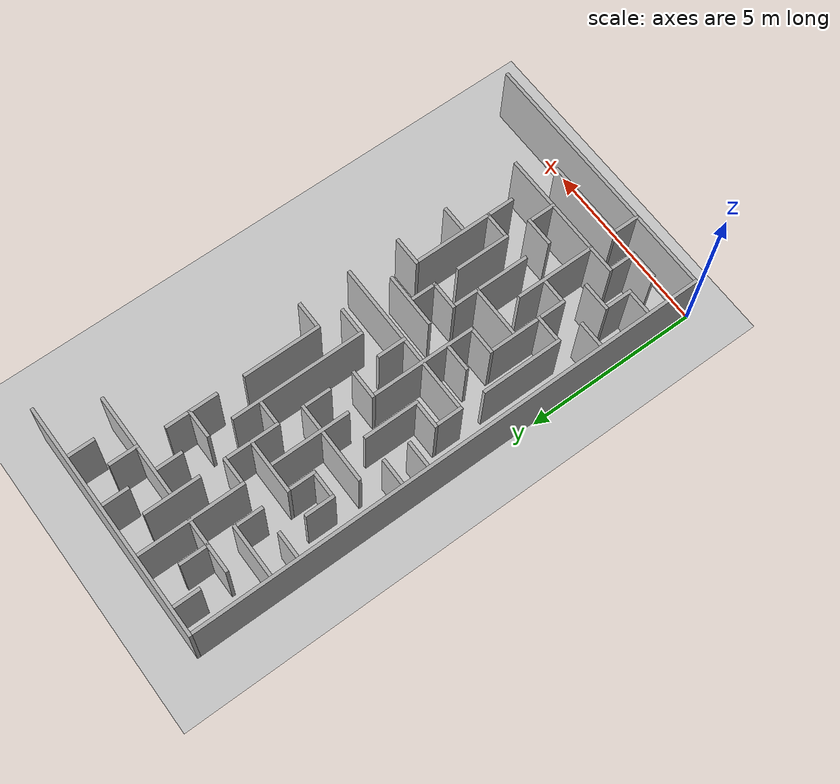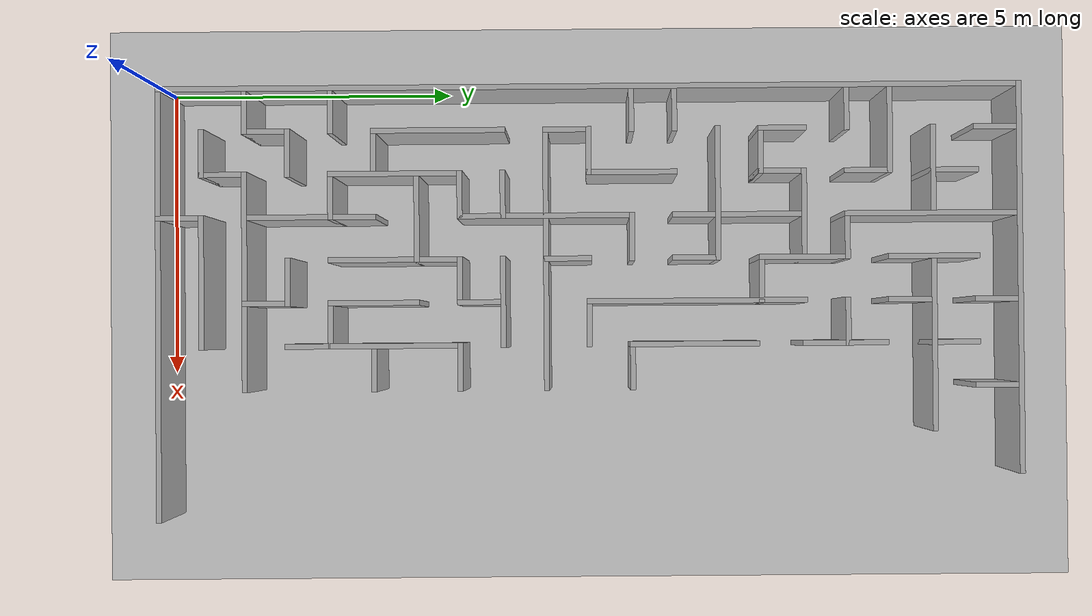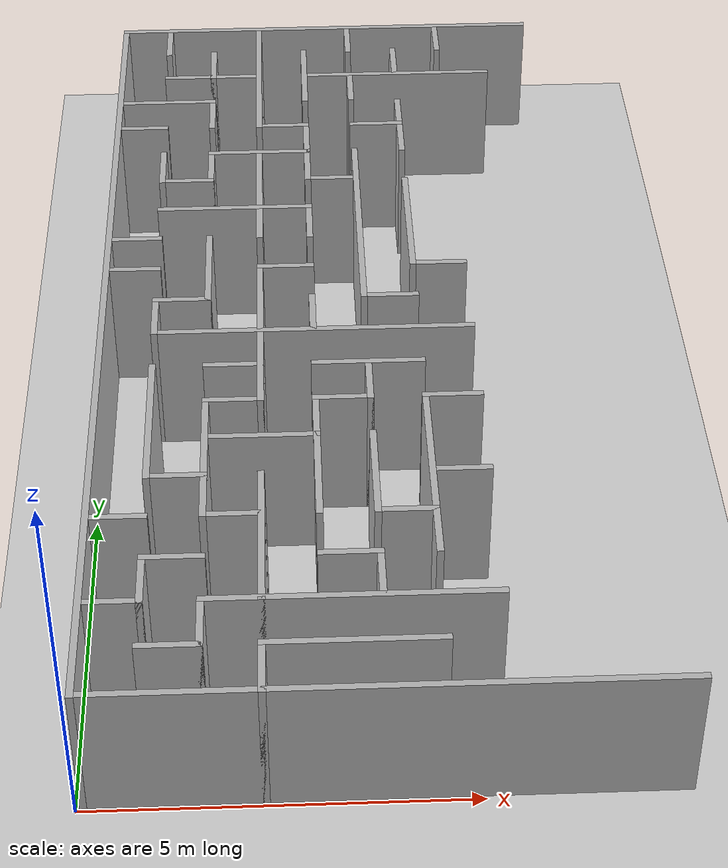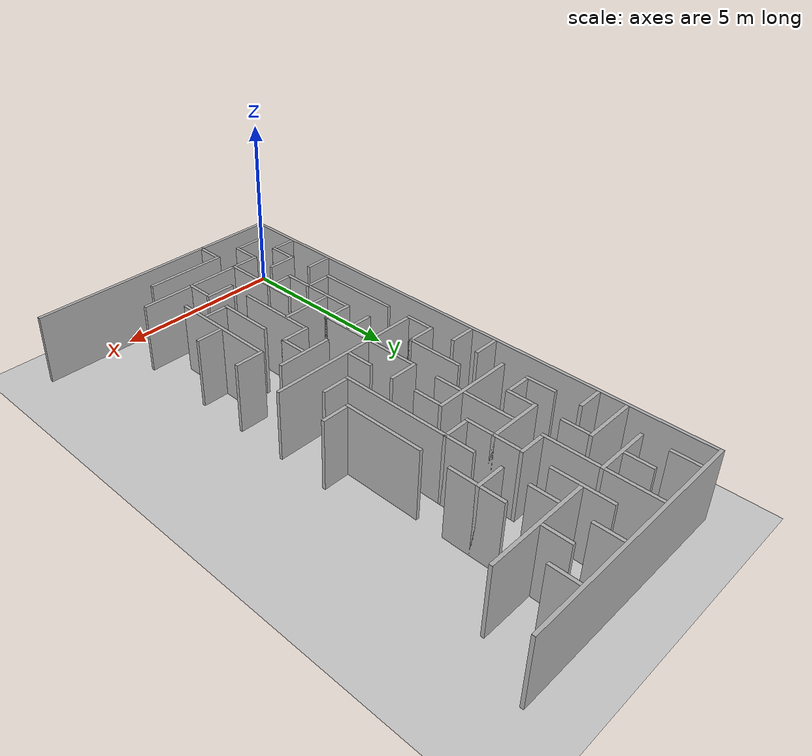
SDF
<sdf version="1.6">
 <world name="slam_world">
  <model name="ground_plane">
   <static>true</static>
   <link name="link">
    <collision name="collision">
     <geometry><plane><normal>0 0 1</normal><size>100 100</size></plane></geometry>
    </collision>
    <visual name="visual">
     <geometry><plane><normal>0 0 1</normal><size>100 100</size></plane></geometry>
     <material>
      <ambient>0.8 0.8 0.8 1</ambient>
      <diffuse>0.8 0.8 0.8 1</diffuse>
      <specular>0.8 0.8 0.8 1</specular>
     </material>
    </visual>
   </link>
  </model>
  <model name="wall_0">
   <static>true</static>
   <pose>3.425925925925926 14.907407407407408 1.0 0 0 0</pose>
   <link name="link">
    <collision name="collision">
     <geometry><box><size>6.7592592592592595 0.0925925925925926 2.0</size></box></geometry>
    </collision>
    <visual name="visual">
     <geometry><box><size>6.7592592592592595 0.0925925925925926 2.0</size></box></geometry>
     <material><ambient>0.5 0.5 0.5 1</ambient><diffuse>0.7 0.7 0.7 1</diffuse></material>
    </visual>
   </link>
  </model>
  <model name="wall_2">
   <static>true</static>
   <pose>0.0925925925925926 7.453703703703704 1.0 0 0 0</pose>
   <link name="link">
    <collision name="collision">
     <geometry><box><size>0.0925925925925926 14.814814814814817 2.0</size></box></geometry>
    </collision>
    <visual name="visual">
     <geometry><box><size>0.0925925925925926 14.814814814814817 2.0</size></box></geometry>
     <material><ambient>0.5 0.5 0.5 1</ambient><diffuse>0.7 0.7 0.7 1</diffuse></material>
    </visual>
   </link>
  </model>
  <model name="wall_3">
   <static>true</static>
   <pose>0.8333333333333334 14.490740740740742 1.0 0 0 0</pose>
   <link name="link">
    <collision name="collision">
     <geometry><box><size>0.0925925925925926 0.7407407407407408 2.0</size></box></geometry>
    </collision>
    <visual name="visual">
     <geometry><box><size>0.0925925925925926 0.7407407407407408 2.0</size></box></geometry>
     <material><ambient>0.5 0.5 0.5 1</ambient><diffuse>0.7 0.7 0.7 1</diffuse></material>
    </visual>
   </link>
  </model>
  <model name="wall_4">
   <static>true</static>
   <pose>2.314814814814815 13.379629629629632 1.0 0 0 0</pose>
   <link name="link">
    <collision name="collision">
     <geometry><box><size>0.0925925925925926 2.9629629629629632 2.0</size></box></geometry>
    </collision>
    <visual name="visual">
     <geometry><box><size>0.0925925925925926 2.9629629629629632 2.0</size></box></geometry>
     <material><ambient>0.5 0.5 0.5 1</ambient><diffuse>0.7 0.7 0.7 1</diffuse></material>
    </visual>
   </link>
  </model>
  <model name="wall_5">
   <static>true</static>
   <pose>3.7962962962962967 14.490740740740742 1.0 0 0 0</pose>
   <link name="link">
    <collision name="collision">
     <geometry><box><size>0.0925925925925926 0.7407407407407408 2.0</size></box></geometry>
    </collision>
    <visual name="visual">
     <geometry><box><size>0.0925925925925926 0.7407407407407408 2.0</size></box></geometry>
     <material><ambient>0.5 0.5 0.5 1</ambient><diffuse>0.7 0.7 0.7 1</diffuse></material>
    </visual>
   </link>
  </model>
  <model name="wall_6">
   <static>true</static>
   <pose>5.277777777777779 14.490740740740742 1.0 0 0 0</pose>
   <link name="link">
    <collision name="collision">
     <geometry><box><size>0.0925925925925926 0.7407407407407408 2.0</size></box></geometry>
    </collision>
    <visual name="visual">
     <geometry><box><size>0.0925925925925926 0.7407407407407408 2.0</size></box></geometry>
     <material><ambient>0.5 0.5 0.5 1</ambient><diffuse>0.7 0.7 0.7 1</diffuse></material>
    </visual>
   </link>
  </model>
  <model name="wall_13">
   <static>true</static>
   <pose>1.5740740740740742 13.796296296296298 1.0 0 0 0</pose>
   <link name="link">
    <collision name="collision">
     <geometry><box><size>0.0925925925925926 0.8333333333333334 2.0</size></box></geometry>
    </collision>
    <visual name="visual">
     <geometry><box><size>0.0925925925925926 0.8333333333333334 2.0</size></box></geometry>
     <material><ambient>0.5 0.5 0.5 1</ambient><diffuse>0.7 0.7 0.7 1</diffuse></material>
    </visual>
   </link>
  </model>
  <model name="wall_14">
   <static>true</static>
   <pose>3.055555555555556 13.425925925925927 1.0 0 0 0</pose>
   <link name="link">
    <collision name="collision">
     <geometry><box><size>0.0925925925925926 1.5740740740740742 2.0</size></box></geometry>
    </collision>
    <visual name="visual">
     <geometry><box><size>0.0925925925925926 1.5740740740740742 2.0</size></box></geometry>
     <material><ambient>0.5 0.5 0.5 1</ambient><diffuse>0.7 0.7 0.7 1</diffuse></material>
    </visual>
   </link>
  </model>
  <model name="wall_15">
   <static>true</static>
   <pose>4.537037037037037 13.796296296296298 1.0 0 0 0</pose>
   <link name="link">
    <collision name="collision">
     <geometry><box><size>0.0925925925925926 0.8333333333333334 2.0</size></box></geometry>
    </collision>
    <visual name="visual">
     <geometry><box><size>0.0925925925925926 0.8333333333333334 2.0</size></box></geometry>
     <material><ambient>0.5 0.5 0.5 1</ambient><diffuse>0.7 0.7 0.7 1</diffuse></material>
    </visual>
   </link>
  </model>
  <model name="wall_24">
   <static>true</static>
   <pose>1.5740740740740742 13.425925925925927 1.0 0 0 0</pose>
   <link name="link">
    <collision name="collision">
     <geometry><box><size>1.5740740740740742 0.0925925925925926 2.0</size></box></geometry>
    </collision>
    <visual name="visual">
     <geometry><box><size>1.5740740740740742 0.0925925925925926 2.0</size></box></geometry>
     <material><ambient>0.5 0.5 0.5 1</ambient><diffuse>0.7 0.7 0.7 1</diffuse></material>
    </visual>
   </link>
  </model>
  <model name="wall_25">
   <static>true</static>
   <pose>4.583333333333334 13.425925925925927 1.0 0 0 0</pose>
   <link name="link">
    <collision name="collision">
     <geometry><box><size>2.9629629629629632 0.0925925925925926 2.0</size></box></geometry>
    </collision>
    <visual name="visual">
     <geometry><box><size>2.9629629629629632 0.0925925925925926 2.0</size></box></geometry>
     <material><ambient>0.5 0.5 0.5 1</ambient><diffuse>0.7 0.7 0.7 1</diffuse></material>
    </visual>
   </link>
  </model>
  <model name="wall_30">
   <static>true</static>
   <pose>3.7962962962962967 13.009259259259261 1.0 0 0 0</pose>
   <link name="link">
    <collision name="collision">
     <geometry><box><size>0.0925925925925926 0.7407407407407408 2.0</size></box></geometry>
    </collision>
    <visual name="visual">
     <geometry><box><size>0.0925925925925926 0.7407407407407408 2.0</size></box></geometry>
     <material><ambient>0.5 0.5 0.5 1</ambient><diffuse>0.7 0.7 0.7 1</diffuse></material>
    </visual>
   </link>
  </model>
  <model name="wall_33">
   <static>true</static>
   <pose>0.8796296296296298 12.685185185185187 1.0 0 0 0</pose>
   <link name="link">
    <collision name="collision">
     <geometry><box><size>1.4814814814814816 0.0925925925925926 2.0</size></box></geometry>
    </collision>
    <visual name="visual">
     <geometry><box><size>1.4814814814814816 0.0925925925925926 2.0</size></box></geometry>
     <material><ambient>0.5 0.5 0.5 1</ambient><diffuse>0.7 0.7 0.7 1</diffuse></material>
    </visual>
   </link>
  </model>
  <model name="wall_38">
   <static>true</static>
   <pose>1.5740740740740742 12.268518518518519 1.0 0 0 0</pose>
   <link name="link">
    <collision name="collision">
     <geometry><box><size>0.0925925925925926 0.7407407407407408 2.0</size></box></geometry>
    </collision>
    <visual name="visual">
     <geometry><box><size>0.0925925925925926 0.7407407407407408 2.0</size></box></geometry>
     <material><ambient>0.5 0.5 0.5 1</ambient><diffuse>0.7 0.7 0.7 1</diffuse></material>
    </visual>
   </link>
  </model>
  <model name="wall_39">
   <static>true</static>
   <pose>4.537037037037037 11.898148148148149 1.0 0 0 0</pose>
   <link name="link">
    <collision name="collision">
     <geometry><box><size>0.0925925925925926 1.4814814814814816 2.0</size></box></geometry>
    </collision>
    <visual name="visual">
     <geometry><box><size>0.0925925925925926 1.4814814814814816 2.0</size></box></geometry>
     <material><ambient>0.5 0.5 0.5 1</ambient><diffuse>0.7 0.7 0.7 1</diffuse></material>
    </visual>
   </link>
  </model>
  <model name="wall_41">
   <static>true</static>
   <pose>0.5092592592592593 11.944444444444446 1.0 0 0 0</pose>
   <link name="link">
    <collision name="collision">
     <geometry><box><size>0.7407407407407408 0.0925925925925926 2.0</size></box></geometry>
    </collision>
    <visual name="visual">
     <geometry><box><size>0.7407407407407408 0.0925925925925926 2.0</size></box></geometry>
     <material><ambient>0.5 0.5 0.5 1</ambient><diffuse>0.7 0.7 0.7 1</diffuse></material>
    </visual>
   </link>
  </model>
  <model name="wall_42">
   <static>true</static>
   <pose>2.731481481481482 11.944444444444446 1.0 0 0 0</pose>
   <link name="link">
    <collision name="collision">
     <geometry><box><size>0.7407407407407408 0.0925925925925926 2.0</size></box></geometry>
    </collision>
    <visual name="visual">
     <geometry><box><size>0.7407407407407408 0.0925925925925926 2.0</size></box></geometry>
     <material><ambient>0.5 0.5 0.5 1</ambient><diffuse>0.7 0.7 0.7 1</diffuse></material>
    </visual>
   </link>
  </model>
  <model name="wall_43">
   <static>true</static>
   <pose>4.166666666666667 11.944444444444446 1.0 0 0 0</pose>
   <link name="link">
    <collision name="collision">
     <geometry><box><size>0.8333333333333334 0.0925925925925926 2.0</size></box></geometry>
    </collision>
    <visual name="visual">
     <geometry><box><size>0.8333333333333334 0.0925925925925926 2.0</size></box></geometry>
     <material><ambient>0.5 0.5 0.5 1</ambient><diffuse>0.7 0.7 0.7 1</diffuse></material>
    </visual>
   </link>
  </model>
  <model name="wall_49">
   <static>true</static>
   <pose>3.055555555555556 11.157407407407408 1.0 0 0 0</pose>
   <link name="link">
    <collision name="collision">
     <geometry><box><size>0.0925925925925926 1.4814814814814816 2.0</size></box></geometry>
    </collision>
    <visual name="visual">
     <geometry><box><size>0.0925925925925926 1.4814814814814816 2.0</size></box></geometry>
     <material><ambient>0.5 0.5 0.5 1</ambient><diffuse>0.7 0.7 0.7 1</diffuse></material>
    </visual>
   </link>
  </model>
  <model name="wall_54">
   <static>true</static>
   <pose>0.8333333333333334 10.833333333333334 1.0 0 0 0</pose>
   <link name="link">
    <collision name="collision">
     <geometry><box><size>0.0925925925925926 0.8333333333333334 2.0</size></box></geometry>
    </collision>
    <visual name="visual">
     <geometry><box><size>0.0925925925925926 0.8333333333333334 2.0</size></box></geometry>
     <material><ambient>0.5 0.5 0.5 1</ambient><diffuse>0.7 0.7 0.7 1</diffuse></material>
    </visual>
   </link>
  </model>
  <model name="wall_55">
   <static>true</static>
   <pose>2.314814814814815 11.203703703703704 1.0 0 0 0</pose>
   <link name="link">
    <collision name="collision">
     <geometry><box><size>1.5740740740740742 0.0925925925925926 2.0</size></box></geometry>
    </collision>
    <visual name="visual">
     <geometry><box><size>1.5740740740740742 0.0925925925925926 2.0</size></box></geometry>
     <material><ambient>0.5 0.5 0.5 1</ambient><diffuse>0.7 0.7 0.7 1</diffuse></material>
    </visual>
   </link>
  </model>
  <model name="wall_56">
   <static>true</static>
   <pose>3.7962962962962967 9.351851851851853 1.0 0 0 0</pose>
   <link name="link">
    <collision name="collision">
     <geometry><box><size>0.0925925925925926 3.7962962962962967 2.0</size></box></geometry>
    </collision>
    <visual name="visual">
     <geometry><box><size>0.0925925925925926 3.7962962962962967 2.0</size></box></geometry>
     <material><ambient>0.5 0.5 0.5 1</ambient><diffuse>0.7 0.7 0.7 1</diffuse></material>
    </visual>
   </link>
  </model>
  <model name="wall_62">
   <static>true</static>
   <pose>1.5740740740740742 10.787037037037038 1.0 0 0 0</pose>
   <link name="link">
    <collision name="collision">
     <geometry><box><size>0.0925925925925926 0.7407407407407408 2.0</size></box></geometry>
    </collision>
    <visual name="visual">
     <geometry><box><size>0.0925925925925926 0.7407407407407408 2.0</size></box></geometry>
     <material><ambient>0.5 0.5 0.5 1</ambient><diffuse>0.7 0.7 0.7 1</diffuse></material>
    </visual>
   </link>
  </model>
  <model name="wall_63">
   <static>true</static>
   <pose>2.314814814814815 10.046296296296298 1.0 0 0 0</pose>
   <link name="link">
    <collision name="collision">
     <geometry><box><size>0.0925925925925926 2.2222222222222223 2.0</size></box></geometry>
    </collision>
    <visual name="visual">
     <geometry><box><size>0.0925925925925926 2.2222222222222223 2.0</size></box></geometry>
     <material><ambient>0.5 0.5 0.5 1</ambient><diffuse>0.7 0.7 0.7 1</diffuse></material>
    </visual>
   </link>
  </model>
  <model name="wall_66">
   <static>true</static>
   <pose>1.2500000000000002 10.462962962962964 1.0 0 0 0</pose>
   <link name="link">
    <collision name="collision">
     <geometry><box><size>0.7407407407407408 0.0925925925925926 2.0</size></box></geometry>
    </collision>
    <visual name="visual">
     <geometry><box><size>0.7407407407407408 0.0925925925925926 2.0</size></box></geometry>
     <material><ambient>0.5 0.5 0.5 1</ambient><diffuse>0.7 0.7 0.7 1</diffuse></material>
    </visual>
   </link>
  </model>
  <model name="wall_67">
   <static>true</static>
   <pose>3.4722222222222228 10.462962962962964 1.0 0 0 0</pose>
   <link name="link">
    <collision name="collision">
     <geometry><box><size>0.7407407407407408 0.0925925925925926 2.0</size></box></geometry>
    </collision>
    <visual name="visual">
     <geometry><box><size>0.7407407407407408 0.0925925925925926 2.0</size></box></geometry>
     <material><ambient>0.5 0.5 0.5 1</ambient><diffuse>0.7 0.7 0.7 1</diffuse></material>
    </visual>
   </link>
  </model>
  <model name="wall_73">
   <static>true</static>
   <pose>4.537037037037037 9.305555555555557 1.0 0 0 0</pose>
   <link name="link">
    <collision name="collision">
     <geometry><box><size>0.0925925925925926 2.2222222222222223 2.0</size></box></geometry>
    </collision>
    <visual name="visual">
     <geometry><box><size>0.0925925925925926 2.2222222222222223 2.0</size></box></geometry>
     <material><ambient>0.5 0.5 0.5 1</ambient><diffuse>0.7 0.7 0.7 1</diffuse></material>
    </visual>
   </link>
  </model>
  <model name="wall_78">
   <static>true</static>
   <pose>1.9444444444444446 9.722222222222223 1.0 0 0 0</pose>
   <link name="link">
    <collision name="collision">
     <geometry><box><size>2.314814814814815 0.0925925925925926 2.0</size></box></geometry>
    </collision>
    <visual name="visual">
     <geometry><box><size>2.314814814814815 0.0925925925925926 2.0</size></box></geometry>
     <material><ambient>0.5 0.5 0.5 1</ambient><diffuse>0.7 0.7 0.7 1</diffuse></material>
    </visual>
   </link>
  </model>
  <model name="wall_84">
   <static>true</static>
   <pose>3.055555555555556 9.305555555555557 1.0 0 0 0</pose>
   <link name="link">
    <collision name="collision">
     <geometry><box><size>0.0925925925925926 0.7407407407407408 2.0</size></box></geometry>
    </collision>
    <visual name="visual">
     <geometry><box><size>0.0925925925925926 0.7407407407407408 2.0</size></box></geometry>
     <material><ambient>0.5 0.5 0.5 1</ambient><diffuse>0.7 0.7 0.7 1</diffuse></material>
    </visual>
   </link>
  </model>
  <model name="wall_89">
   <static>true</static>
   <pose>0.5092592592592593 8.981481481481483 1.0 0 0 0</pose>
   <link name="link">
    <collision name="collision">
     <geometry><box><size>0.7407407407407408 0.0925925925925926 2.0</size></box></geometry>
    </collision>
    <visual name="visual">
     <geometry><box><size>0.7407407407407408 0.0925925925925926 2.0</size></box></geometry>
     <material><ambient>0.5 0.5 0.5 1</ambient><diffuse>0.7 0.7 0.7 1</diffuse></material>
    </visual>
   </link>
  </model>
  <model name="wall_90">
   <static>true</static>
   <pose>1.5740740740740742 8.240740740740742 1.0 0 0 0</pose>
   <link name="link">
    <collision name="collision">
     <geometry><box><size>0.0925925925925926 1.5740740740740742 2.0</size></box></geometry>
    </collision>
    <visual name="visual">
     <geometry><box><size>0.0925925925925926 1.5740740740740742 2.0</size></box></geometry>
     <material><ambient>0.5 0.5 0.5 1</ambient><diffuse>0.7 0.7 0.7 1</diffuse></material>
    </visual>
   </link>
  </model>
  <model name="wall_98">
   <static>true</static>
   <pose>0.5092592592592593 8.240740740740742 1.0 0 0 0</pose>
   <link name="link">
    <collision name="collision">
     <geometry><box><size>0.7407407407407408 0.0925925925925926 2.0</size></box></geometry>
    </collision>
    <visual name="visual">
     <geometry><box><size>0.7407407407407408 0.0925925925925926 2.0</size></box></geometry>
     <material><ambient>0.5 0.5 0.5 1</ambient><diffuse>0.7 0.7 0.7 1</diffuse></material>
    </visual>
   </link>
  </model>
  <model name="wall_99">
   <static>true</static>
   <pose>2.6851851851851856 8.240740740740742 1.0 0 0 0</pose>
   <link name="link">
    <collision name="collision">
     <geometry><box><size>0.8333333333333334 0.0925925925925926 2.0</size></box></geometry>
    </collision>
    <visual name="visual">
     <geometry><box><size>0.8333333333333334 0.0925925925925926 2.0</size></box></geometry>
     <material><ambient>0.5 0.5 0.5 1</ambient><diffuse>0.7 0.7 0.7 1</diffuse></material>
    </visual>
   </link>
  </model>
  <model name="wall_100">
   <static>true</static>
   <pose>4.953703703703704 8.240740740740742 1.0 0 0 0</pose>
   <link name="link">
    <collision name="collision">
     <geometry><box><size>0.7407407407407408 0.0925925925925926 2.0</size></box></geometry>
    </collision>
    <visual name="visual">
     <geometry><box><size>0.7407407407407408 0.0925925925925926 2.0</size></box></geometry>
     <material><ambient>0.5 0.5 0.5 1</ambient><diffuse>0.7 0.7 0.7 1</diffuse></material>
    </visual>
   </link>
  </model>
  <model name="wall_106">
   <static>true</static>
   <pose>2.314814814814815 6.712962962962964 1.0 0 0 0</pose>
   <link name="link">
    <collision name="collision">
     <geometry><box><size>0.0925925925925926 2.9629629629629632 2.0</size></box></geometry>
    </collision>
    <visual name="visual">
     <geometry><box><size>0.0925925925925926 2.9629629629629632 2.0</size></box></geometry>
     <material><ambient>0.5 0.5 0.5 1</ambient><diffuse>0.7 0.7 0.7 1</diffuse></material>
    </visual>
   </link>
  </model>
  <model name="wall_108">
   <static>true</static>
   <pose>1.2037037037037037 7.500000000000001 1.0 0 0 0</pose>
   <link name="link">
    <collision name="collision">
     <geometry><box><size>0.8333333333333334 0.0925925925925926 2.0</size></box></geometry>
    </collision>
    <visual name="visual">
     <geometry><box><size>0.8333333333333334 0.0925925925925926 2.0</size></box></geometry>
     <material><ambient>0.5 0.5 0.5 1</ambient><diffuse>0.7 0.7 0.7 1</diffuse></material>
    </visual>
   </link>
  </model>
  <model name="wall_109">
   <static>true</static>
   <pose>3.055555555555556 7.129629629629631 1.0 0 0 0</pose>
   <link name="link">
    <collision name="collision">
     <geometry><box><size>0.0925925925925926 0.8333333333333334 2.0</size></box></geometry>
    </collision>
    <visual name="visual">
     <geometry><box><size>0.0925925925925926 0.8333333333333334 2.0</size></box></geometry>
     <material><ambient>0.5 0.5 0.5 1</ambient><diffuse>0.7 0.7 0.7 1</diffuse></material>
    </visual>
   </link>
  </model>
  <model name="wall_110">
   <static>true</static>
   <pose>4.212962962962964 7.500000000000001 1.0 0 0 0</pose>
   <link name="link">
    <collision name="collision">
     <geometry><box><size>0.7407407407407408 0.0925925925925926 2.0</size></box></geometry>
    </collision>
    <visual name="visual">
     <geometry><box><size>0.7407407407407408 0.0925925925925926 2.0</size></box></geometry>
     <material><ambient>0.5 0.5 0.5 1</ambient><diffuse>0.7 0.7 0.7 1</diffuse></material>
    </visual>
   </link>
  </model>
  <model name="wall_116">
   <static>true</static>
   <pose>0.8333333333333334 7.083333333333334 1.0 0 0 0</pose>
   <link name="link">
    <collision name="collision">
     <geometry><box><size>0.0925925925925926 0.7407407407407408 2.0</size></box></geometry>
    </collision>
    <visual name="visual">
     <geometry><box><size>0.0925925925925926 0.7407407407407408 2.0</size></box></geometry>
     <material><ambient>0.5 0.5 0.5 1</ambient><diffuse>0.7 0.7 0.7 1</diffuse></material>
    </visual>
   </link>
  </model>
  <model name="wall_118">
   <static>true</static>
   <pose>3.101851851851852 6.7592592592592595 1.0 0 0 0</pose>
   <link name="link">
    <collision name="collision">
     <geometry><box><size>4.444444444444445 0.0925925925925926 2.0</size></box></geometry>
    </collision>
    <visual name="visual">
     <geometry><box><size>4.444444444444445 0.0925925925925926 2.0</size></box></geometry>
     <material><ambient>0.5 0.5 0.5 1</ambient><diffuse>0.7 0.7 0.7 1</diffuse></material>
    </visual>
   </link>
  </model>
  <model name="wall_125">
   <static>true</static>
   <pose>0.8333333333333334 4.907407407407407 1.0 0 0 0</pose>
   <link name="link">
    <collision name="collision">
     <geometry><box><size>0.0925925925925926 2.314814814814815 2.0</size></box></geometry>
    </collision>
    <visual name="visual">
     <geometry><box><size>0.0925925925925926 2.314814814814815 2.0</size></box></geometry>
     <material><ambient>0.5 0.5 0.5 1</ambient><diffuse>0.7 0.7 0.7 1</diffuse></material>
    </visual>
   </link>
  </model>
  <model name="wall_126">
   <static>true</static>
   <pose>1.9444444444444446 6.018518518518519 1.0 0 0 0</pose>
   <link name="link">
    <collision name="collision">
     <geometry><box><size>0.8333333333333334 0.0925925925925926 2.0</size></box></geometry>
    </collision>
    <visual name="visual">
     <geometry><box><size>0.8333333333333334 0.0925925925925926 2.0</size></box></geometry>
     <material><ambient>0.5 0.5 0.5 1</ambient><diffuse>0.7 0.7 0.7 1</diffuse></material>
    </visual>
   </link>
  </model>
  <model name="wall_127">
   <static>true</static>
   <pose>3.7962962962962967 6.018518518518519 1.0 0 0 0</pose>
   <link name="link">
    <collision name="collision">
     <geometry><box><size>1.5740740740740742 0.0925925925925926 2.0</size></box></geometry>
    </collision>
    <visual name="visual">
     <geometry><box><size>1.5740740740740742 0.0925925925925926 2.0</size></box></geometry>
     <material><ambient>0.5 0.5 0.5 1</ambient><diffuse>0.7 0.7 0.7 1</diffuse></material>
    </visual>
   </link>
  </model>
  <model name="wall_131">
   <static>true</static>
   <pose>3.7962962962962967 5.601851851851852 1.0 0 0 0</pose>
   <link name="link">
    <collision name="collision">
     <geometry><box><size>0.0925925925925926 0.7407407407407408 2.0</size></box></geometry>
    </collision>
    <visual name="visual">
     <geometry><box><size>0.0925925925925926 0.7407407407407408 2.0</size></box></geometry>
     <material><ambient>0.5 0.5 0.5 1</ambient><diffuse>0.7 0.7 0.7 1</diffuse></material>
    </visual>
   </link>
  </model>
  <model name="wall_135">
   <static>true</static>
   <pose>1.9444444444444446 5.277777777777779 1.0 0 0 0</pose>
   <link name="link">
    <collision name="collision">
     <geometry><box><size>0.8333333333333334 0.0925925925925926 2.0</size></box></geometry>
    </collision>
    <visual name="visual">
     <geometry><box><size>0.8333333333333334 0.0925925925925926 2.0</size></box></geometry>
     <material><ambient>0.5 0.5 0.5 1</ambient><diffuse>0.7 0.7 0.7 1</diffuse></material>
    </visual>
   </link>
  </model>
  <model name="wall_136">
   <static>true</static>
   <pose>3.425925925925926 5.277777777777779 1.0 0 0 0</pose>
   <link name="link">
    <collision name="collision">
     <geometry><box><size>0.8333333333333334 0.0925925925925926 2.0</size></box></geometry>
    </collision>
    <visual name="visual">
     <geometry><box><size>0.8333333333333334 0.0925925925925926 2.0</size></box></geometry>
     <material><ambient>0.5 0.5 0.5 1</ambient><diffuse>0.7 0.7 0.7 1</diffuse></material>
    </visual>
   </link>
  </model>
  <model name="wall_137">
   <static>true</static>
   <pose>4.907407407407407 5.277777777777779 1.0 0 0 0</pose>
   <link name="link">
    <collision name="collision">
     <geometry><box><size>0.8333333333333334 0.0925925925925926 2.0</size></box></geometry>
    </collision>
    <visual name="visual">
     <geometry><box><size>0.8333333333333334 0.0925925925925926 2.0</size></box></geometry>
     <material><ambient>0.5 0.5 0.5 1</ambient><diffuse>0.7 0.7 0.7 1</diffuse></material>
    </visual>
   </link>
  </model>
  <model name="wall_143">
   <static>true</static>
   <pose>1.5740740740740742 4.120370370370371 1.0 0 0 0</pose>
   <link name="link">
    <collision name="collision">
     <geometry><box><size>0.0925925925925926 2.2222222222222223 2.0</size></box></geometry>
    </collision>
    <visual name="visual">
     <geometry><box><size>0.0925925925925926 2.2222222222222223 2.0</size></box></geometry>
     <material><ambient>0.5 0.5 0.5 1</ambient><diffuse>0.7 0.7 0.7 1</diffuse></material>
    </visual>
   </link>
  </model>
  <model name="wall_144">
   <static>true</static>
   <pose>3.055555555555556 4.120370370370371 1.0 0 0 0</pose>
   <link name="link">
    <collision name="collision">
     <geometry><box><size>0.0925925925925926 2.2222222222222223 2.0</size></box></geometry>
    </collision>
    <visual name="visual">
     <geometry><box><size>0.0925925925925926 2.2222222222222223 2.0</size></box></geometry>
     <material><ambient>0.5 0.5 0.5 1</ambient><diffuse>0.7 0.7 0.7 1</diffuse></material>
    </visual>
   </link>
  </model>
  <model name="wall_145">
   <static>true</static>
   <pose>4.537037037037037 3.7500000000000004 1.0 0 0 0</pose>
   <link name="link">
    <collision name="collision">
     <geometry><box><size>0.0925925925925926 2.9629629629629632 2.0</size></box></geometry>
    </collision>
    <visual name="visual">
     <geometry><box><size>0.0925925925925926 2.9629629629629632 2.0</size></box></geometry>
     <material><ambient>0.5 0.5 0.5 1</ambient><diffuse>0.7 0.7 0.7 1</diffuse></material>
    </visual>
   </link>
  </model>
  <model name="wall_149">
   <static>true</static>
   <pose>2.361111111111111 4.537037037037037 1.0 0 0 0</pose>
   <link name="link">
    <collision name="collision">
     <geometry><box><size>1.4814814814814816 0.0925925925925926 2.0</size></box></geometry>
    </collision>
    <visual name="visual">
     <geometry><box><size>1.4814814814814816 0.0925925925925926 2.0</size></box></geometry>
     <material><ambient>0.5 0.5 0.5 1</ambient><diffuse>0.7 0.7 0.7 1</diffuse></material>
    </visual>
   </link>
  </model>
  <model name="wall_150">
   <static>true</static>
   <pose>3.7962962962962967 3.7962962962962967 1.0 0 0 0</pose>
   <link name="link">
    <collision name="collision">
     <geometry><box><size>0.0925925925925926 1.5740740740740742 2.0</size></box></geometry>
    </collision>
    <visual name="visual">
     <geometry><box><size>0.0925925925925926 1.5740740740740742 2.0</size></box></geometry>
     <material><ambient>0.5 0.5 0.5 1</ambient><diffuse>0.7 0.7 0.7 1</diffuse></material>
    </visual>
   </link>
  </model>
  <model name="wall_157">
   <static>true</static>
   <pose>1.2500000000000002 3.7962962962962967 1.0 0 0 0</pose>
   <link name="link">
    <collision name="collision">
     <geometry><box><size>0.7407407407407408 0.0925925925925926 2.0</size></box></geometry>
    </collision>
    <visual name="visual">
     <geometry><box><size>0.7407407407407408 0.0925925925925926 2.0</size></box></geometry>
     <material><ambient>0.5 0.5 0.5 1</ambient><diffuse>0.7 0.7 0.7 1</diffuse></material>
    </visual>
   </link>
  </model>
  <model name="wall_158">
   <static>true</static>
   <pose>2.314814814814815 2.6851851851851856 1.0 0 0 0</pose>
   <link name="link">
    <collision name="collision">
     <geometry><box><size>0.0925925925925926 2.314814814814815 2.0</size></box></geometry>
    </collision>
    <visual name="visual">
     <geometry><box><size>0.0925925925925926 2.314814814814815 2.0</size></box></geometry>
     <material><ambient>0.5 0.5 0.5 1</ambient><diffuse>0.7 0.7 0.7 1</diffuse></material>
    </visual>
   </link>
  </model>
  <model name="wall_159">
   <static>true</static>
   <pose>4.953703703703704 3.7962962962962967 1.0 0 0 0</pose>
   <link name="link">
    <collision name="collision">
     <geometry><box><size>0.7407407407407408 0.0925925925925926 2.0</size></box></geometry>
    </collision>
    <visual name="visual">
     <geometry><box><size>0.7407407407407408 0.0925925925925926 2.0</size></box></geometry>
     <material><ambient>0.5 0.5 0.5 1</ambient><diffuse>0.7 0.7 0.7 1</diffuse></material>
    </visual>
   </link>
  </model>
  <model name="wall_166">
   <static>true</static>
   <pose>0.5092592592592593 3.055555555555556 1.0 0 0 0</pose>
   <link name="link">
    <collision name="collision">
     <geometry><box><size>0.7407407407407408 0.0925925925925926 2.0</size></box></geometry>
    </collision>
    <visual name="visual">
     <geometry><box><size>0.7407407407407408 0.0925925925925926 2.0</size></box></geometry>
     <material><ambient>0.5 0.5 0.5 1</ambient><diffuse>0.7 0.7 0.7 1</diffuse></material>
    </visual>
   </link>
  </model>
  <model name="wall_167">
   <static>true</static>
   <pose>1.990740740740741 3.055555555555556 1.0 0 0 0</pose>
   <link name="link">
    <collision name="collision">
     <geometry><box><size>0.7407407407407408 0.0925925925925926 2.0</size></box></geometry>
    </collision>
    <visual name="visual">
     <geometry><box><size>0.7407407407407408 0.0925925925925926 2.0</size></box></geometry>
     <material><ambient>0.5 0.5 0.5 1</ambient><diffuse>0.7 0.7 0.7 1</diffuse></material>
    </visual>
   </link>
  </model>
  <model name="wall_168">
   <static>true</static>
   <pose>4.212962962962964 3.055555555555556 1.0 0 0 0</pose>
   <link name="link">
    <collision name="collision">
     <geometry><box><size>0.7407407407407408 0.0925925925925926 2.0</size></box></geometry>
    </collision>
    <visual name="visual">
     <geometry><box><size>0.7407407407407408 0.0925925925925926 2.0</size></box></geometry>
     <material><ambient>0.5 0.5 0.5 1</ambient><diffuse>0.7 0.7 0.7 1</diffuse></material>
    </visual>
   </link>
  </model>
  <model name="wall_178">
   <static>true</static>
   <pose>1.2037037037037037 2.314814814814815 1.0 0 0 0</pose>
   <link name="link">
    <collision name="collision">
     <geometry><box><size>0.8333333333333334 0.0925925925925926 2.0</size></box></geometry>
    </collision>
    <visual name="visual">
     <geometry><box><size>0.8333333333333334 0.0925925925925926 2.0</size></box></geometry>
     <material><ambient>0.5 0.5 0.5 1</ambient><diffuse>0.7 0.7 0.7 1</diffuse></material>
    </visual>
   </link>
  </model>
  <model name="wall_179">
   <static>true</static>
   <pose>3.425925925925926 2.314814814814815 1.0 0 0 0</pose>
   <link name="link">
    <collision name="collision">
     <geometry><box><size>0.8333333333333334 0.0925925925925926 2.0</size></box></geometry>
    </collision>
    <visual name="visual">
     <geometry><box><size>0.8333333333333334 0.0925925925925926 2.0</size></box></geometry>
     <material><ambient>0.5 0.5 0.5 1</ambient><diffuse>0.7 0.7 0.7 1</diffuse></material>
    </visual>
   </link>
  </model>
  <model name="wall_184">
   <static>true</static>
   <pose>0.8333333333333334 1.8981481481481484 1.0 0 0 0</pose>
   <link name="link">
    <collision name="collision">
     <geometry><box><size>0.0925925925925926 0.7407407407407408 2.0</size></box></geometry>
    </collision>
    <visual name="visual">
     <geometry><box><size>0.0925925925925926 0.7407407407407408 2.0</size></box></geometry>
     <material><ambient>0.5 0.5 0.5 1</ambient><diffuse>0.7 0.7 0.7 1</diffuse></material>
    </visual>
   </link>
  </model>
  <model name="wall_185">
   <static>true</static>
   <pose>3.7962962962962967 1.8981481481481484 1.0 0 0 0</pose>
   <link name="link">
    <collision name="collision">
     <geometry><box><size>0.0925925925925926 0.7407407407407408 2.0</size></box></geometry>
    </collision>
    <visual name="visual">
     <geometry><box><size>0.0925925925925926 0.7407407407407408 2.0</size></box></geometry>
     <material><ambient>0.5 0.5 0.5 1</ambient><diffuse>0.7 0.7 0.7 1</diffuse></material>
    </visual>
   </link>
  </model>
  <model name="wall_186">
   <static>true</static>
   <pose>0.5092592592592593 1.5740740740740742 1.0 0 0 0</pose>
   <link name="link">
    <collision name="collision">
     <geometry><box><size>0.7407407407407408 0.0925925925925926 2.0</size></box></geometry>
    </collision>
    <visual name="visual">
     <geometry><box><size>0.7407407407407408 0.0925925925925926 2.0</size></box></geometry>
     <material><ambient>0.5 0.5 0.5 1</ambient><diffuse>0.7 0.7 0.7 1</diffuse></material>
    </visual>
   </link>
  </model>
  <model name="wall_187">
   <static>true</static>
   <pose>3.425925925925926 1.5740740740740742 1.0 0 0 0</pose>
   <link name="link">
    <collision name="collision">
     <geometry><box><size>3.7962962962962967 0.0925925925925926 2.0</size></box></geometry>
    </collision>
    <visual name="visual">
     <geometry><box><size>3.7962962962962967 0.0925925925925926 2.0</size></box></geometry>
     <material><ambient>0.5 0.5 0.5 1</ambient><diffuse>0.7 0.7 0.7 1</diffuse></material>
    </visual>
   </link>
  </model>
  <model name="wall_190">
   <static>true</static>
   <pose>1.5740740740740742 1.1574074074074074 1.0 0 0 0</pose>
   <link name="link">
    <collision name="collision">
     <geometry><box><size>0.0925925925925926 0.7407407407407408 2.0</size></box></geometry>
    </collision>
    <visual name="visual">
     <geometry><box><size>0.0925925925925926 0.7407407407407408 2.0</size></box></geometry>
     <material><ambient>0.5 0.5 0.5 1</ambient><diffuse>0.7 0.7 0.7 1</diffuse></material>
    </visual>
   </link>
  </model>
  <model name="wall_196">
   <static>true</static>
   <pose>1.2037037037037037 0.8333333333333334 1.0 0 0 0</pose>
   <link name="link">
    <collision name="collision">
     <geometry><box><size>0.8333333333333334 0.0925925925925926 2.0</size></box></geometry>
    </collision>
    <visual name="visual">
     <geometry><box><size>0.8333333333333334 0.0925925925925926 2.0</size></box></geometry>
     <material><ambient>0.5 0.5 0.5 1</ambient><diffuse>0.7 0.7 0.7 1</diffuse></material>
    </visual>
   </link>
  </model>
  <model name="wall_197">
   <static>true</static>
   <pose>3.425925925925926 0.8333333333333334 1.0 0 0 0</pose>
   <link name="link">
    <collision name="collision">
     <geometry><box><size>2.314814814814815 0.0925925925925926 2.0</size></box></geometry>
    </collision>
    <visual name="visual">
     <geometry><box><size>2.314814814814815 0.0925925925925926 2.0</size></box></geometry>
     <material><ambient>0.5 0.5 0.5 1</ambient><diffuse>0.7 0.7 0.7 1</diffuse></material>
    </visual>
   </link>
  </model>
  <model name="wall_203">
   <static>true</static>
   <pose>2.314814814814815 0.4166666666666667 1.0 0 0 0</pose>
   <link name="link">
    <collision name="collision">
     <geometry><box><size>0.0925925925925926 0.7407407407407408 2.0</size></box></geometry>
    </collision>
    <visual name="visual">
     <geometry><box><size>0.0925925925925926 0.7407407407407408 2.0</size></box></geometry>
     <material><ambient>0.5 0.5 0.5 1</ambient><diffuse>0.7 0.7 0.7 1</diffuse></material>
    </visual>
   </link>
  </model>
  <model name="wall_206">
   <static>true</static>
   <pose>3.842592592592593 0.0925925925925926 1.0 0 0 0</pose>
   <link name="link">
    <collision name="collision">
     <geometry><box><size>7.407407407407408 0.0925925925925926 2.0</size></box></geometry>
    </collision>
    <visual name="visual">
     <geometry><box><size>7.407407407407408 0.0925925925925926 2.0</size></box></geometry>
     <material><ambient>0.5 0.5 0.5 1</ambient><diffuse>0.7 0.7 0.7 1</diffuse></material>
    </visual>
   </link>
  </model>
 </world>
</sdf>
